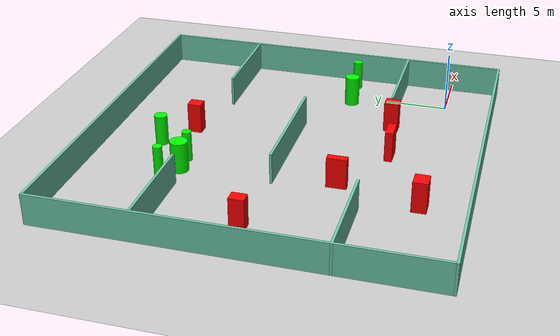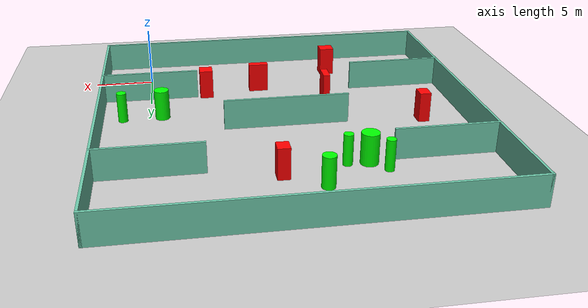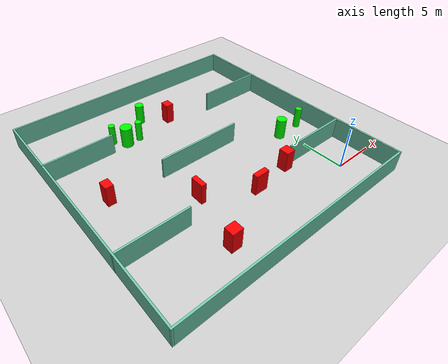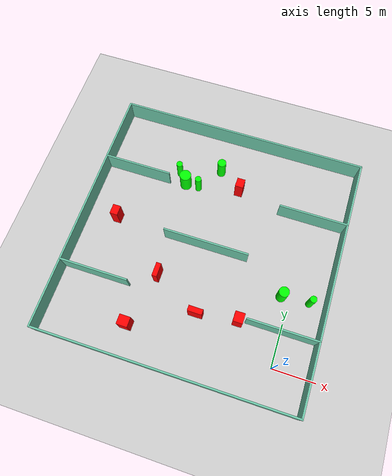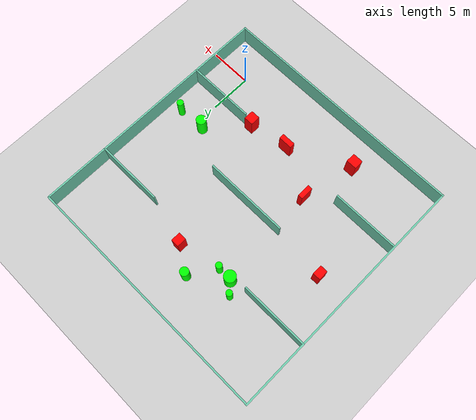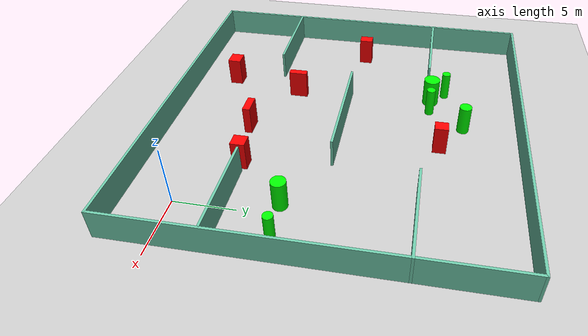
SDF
<sdf version="1.7">
 <world name="default">
  <light name="sun" type="directional">
   <pose>0 0 10 0 -0 0</pose>
   <diffuse>0.8 0.8 0.8 1</diffuse>
   <specular>0.2 0.2 0.2 1</specular>
   <attenuation>
    <range>1000</range>
    <constant>0.9</constant>
    <linear>0.01</linear>
    <quadratic>0.001</quadratic>
   </attenuation>
   <direction>-0.5 0.1 -0.9</direction>
   <spot><inner_angle>0</inner_angle><outer_angle>0</outer_angle><falloff>0</falloff></spot>
  </light>
  <model name="ground_plane">
   <static>1</static>
   <link name="link">
    <collision name="collision">
     <geometry><plane><normal>0 0 1</normal><size>100 100</size></plane></geometry>
     <surface>
      <contact><collide_bitmask>65535</collide_bitmask></contact>
      <friction><ode><mu>100</mu><mu2>50</mu2></ode></friction>
     </surface>
    </collision>
    <visual name="visual">
     <cast_shadows>0</cast_shadows>
     <geometry><plane><normal>0 0 1</normal><size>100 100</size></plane></geometry>
     <material>
      <script><uri>file://media/materials/scripts/gazebo.material</uri><name>Gazebo/Grey</name></script>
     </material>
    </visual>
   </link>
  </model>
  <gravity>0 0 -9.8</gravity>
  <magnetic_field>6e-06 2.3e-05 -4.2e-05</magnetic_field>
  <atmosphere type="adiabatic"/>
  <physics type="ode">
   <max_step_size>0.001</max_step_size>
   <real_time_factor>1</real_time_factor>
   <real_time_update_rate>1000</real_time_update_rate>
  </physics>
  <scene><ambient>0.4 0.4 0.4 1</ambient><background>0.7 0.7 0.7 1</background><shadows>1</shadows></scene>
  <spherical_coordinates>
   <surface_model>EARTH_WGS84</surface_model>
   <latitude_deg>0</latitude_deg>
   <longitude_deg>0</longitude_deg>
   <elevation>0</elevation>
   <heading_deg>0</heading_deg>
  </spherical_coordinates>
  <model name="my_base_walls">
   <link name="Wall_10">
    <collision name="Wall_10_Collision">
     <geometry><box><size>8.2 0.2 2.5</size></box></geometry>
     <pose>0 0 1.25 0 -0 0</pose>
    </collision>
    <visual name="Wall_10_Visual">
     <pose>0 0 1.25 0 -0 0</pose>
     <geometry><box><size>8.2 0.2 2.5</size></box></geometry>
     <material>
      <script><uri>file://media/materials/scripts/gazebo.material</uri><name>Gazebo/Grey</name></script>
      <ambient>0.435294 0.796078 0.67451 1</ambient>
     </material>
     <meta><layer>0</layer></meta>
    </visual>
    <pose>-11 -7 0 0 -0 0</pose>
   </link>
   <link name="Wall_12">
    <collision name="Wall_12_Collision">
     <geometry><box><size>8.2 0.2 2.5</size></box></geometry>
     <pose>0 0 1.25 0 -0 0</pose>
    </collision>
    <visual name="Wall_12_Visual">
     <pose>0 0 1.25 0 -0 0</pose>
     <geometry><box><size>8.2 0.2 2.5</size></box></geometry>
     <material>
      <script><uri>file://media/materials/scripts/gazebo.material</uri><name>Gazebo/Grey</name></script>
      <ambient>0.435294 0.796078 0.67451 1</ambient>
     </material>
     <meta><layer>0</layer></meta>
    </visual>
    <pose>-11 7 0 0 -0 0</pose>
   </link>
   <link name="Wall_14">
    <collision name="Wall_14_Collision">
     <geometry><box><size>8.2 0.2 2.5</size></box></geometry>
     <pose>0 0 1.25 0 -0 0</pose>
    </collision>
    <visual name="Wall_14_Visual">
     <pose>0 0 1.25 0 -0 0</pose>
     <geometry><box><size>8.2 0.2 2.5</size></box></geometry>
     <material>
      <script><uri>file://media/materials/scripts/gazebo.material</uri><name>Gazebo/Grey</name></script>
      <ambient>0.435294 0.796078 0.67451 1</ambient>
     </material>
     <meta><layer>0</layer></meta>
    </visual>
    <pose>11 7 0 0 -0 3.14159</pose>
   </link>
   <link name="Wall_16">
    <collision name="Wall_16_Collision">
     <geometry><box><size>10.2 0.2 2.5</size></box></geometry>
     <pose>0 0 1.25 0 -0 0</pose>
    </collision>
    <visual name="Wall_16_Visual">
     <pose>0 0 1.25 0 -0 0</pose>
     <geometry><box><size>10.2 0.2 2.5</size></box></geometry>
     <material>
      <script><uri>file://media/materials/scripts/gazebo.material</uri><name>Gazebo/Grey</name></script>
      <ambient>0.435294 0.796078 0.67451 1</ambient>
     </material>
     <meta><layer>0</layer></meta>
    </visual>
    <pose>0 0 0 0 -0 3.14159</pose>
   </link>
   <link name="Wall_2">
    <collision name="Wall_2_Collision">
     <geometry><box><size>30.2 0.2 2.5</size></box></geometry>
     <pose>0 0 1.25 0 -0 0</pose>
    </collision>
    <visual name="Wall_2_Visual">
     <pose>0 0 1.25 0 -0 0</pose>
     <geometry><box><size>30.2 0.2 2.5</size></box></geometry>
     <material>
      <script><uri>file://media/materials/scripts/gazebo.material</uri><name>Gazebo/Grey</name></script>
      <ambient>0.435294 0.796078 0.67451 1</ambient>
     </material>
     <meta><layer>0</layer></meta>
    </visual>
    <pose>0 -15 0 0 -0 3.14159</pose>
   </link>
   <link name="Wall_3">
    <collision name="Wall_3_Collision">
     <geometry><box><size>30.2 0.2 2.5</size></box></geometry>
     <pose>0 0 1.25 0 -0 0</pose>
    </collision>
    <visual name="Wall_3_Visual">
     <pose>0 0 1.25 0 -0 0</pose>
     <geometry><box><size>30.2 0.2 2.5</size></box></geometry>
     <material>
      <script><uri>file://media/materials/scripts/gazebo.material</uri><name>Gazebo/Grey</name></script>
      <ambient>0.435294 0.796078 0.67451 1</ambient>
     </material>
     <meta><layer>0</layer></meta>
    </visual>
    <pose>-15 0 0 0 -0 1.5708</pose>
   </link>
   <link name="Wall_4">
    <collision name="Wall_4_Collision">
     <geometry><box><size>30.2 0.2 2.5</size></box></geometry>
     <pose>0 0 1.25 0 -0 0</pose>
    </collision>
    <visual name="Wall_4_Visual">
     <pose>0 0 1.25 0 -0 0</pose>
     <geometry><box><size>30.2 0.2 2.5</size></box></geometry>
     <material>
      <script><uri>file://media/materials/scripts/gazebo.material</uri><name>Gazebo/Grey</name></script>
      <ambient>0.435294 0.796078 0.67451 1</ambient>
     </material>
     <meta><layer>0</layer></meta>
    </visual>
    <pose>0 15 0 0 -0 0</pose>
   </link>
   <link name="Wall_6">
    <collision name="Wall_6_Collision">
     <geometry><box><size>30.2 0.2 2.5</size></box></geometry>
     <pose>0 0 1.25 0 -0 0</pose>
    </collision>
    <visual name="Wall_6_Visual">
     <pose>0 0 1.25 0 -0 0</pose>
     <geometry><box><size>30.2 0.2 2.5</size></box></geometry>
     <material>
      <script><uri>file://media/materials/scripts/gazebo.material</uri><name>Gazebo/Grey</name></script>
      <ambient>0.435294 0.796078 0.67451 1</ambient>
     </material>
     <meta><layer>0</layer></meta>
    </visual>
    <pose>15 0 0 0 -0 1.5708</pose>
   </link>
   <link name="Wall_8">
    <collision name="Wall_8_Collision">
     <geometry><box><size>8.2 0.2 2.5</size></box></geometry>
     <pose>0 0 1.25 0 -0 0</pose>
    </collision>
    <visual name="Wall_8_Visual">
     <pose>0 0 1.25 0 -0 0</pose>
     <geometry><box><size>8.2 0.2 2.5</size></box></geometry>
     <material>
      <script><uri>file://media/materials/scripts/gazebo.material</uri><name>Gazebo/Grey</name></script>
      <ambient>0.435294 0.796078 0.67451 1</ambient>
     </material>
     <meta><layer>0</layer></meta>
    </visual>
    <pose>11 -7 0 0 -0 3.14159</pose>
   </link>
   <static>1</static>
   <pose>-11 11 0 0 -0 0</pose>
  </model>
  <model name="cylinder1">
   <static>1</static>
   <link name="link">
    <inertial>
     <mass>1</mass>
     <inertia><ixx>0.5</ixx><ixy>0</ixy><ixz>0</ixz><iyy>0.5</iyy><iyz>0</iyz><izz>1</izz></inertia>
    </inertial>
    <collision name="collision">
     <geometry><cylinder><radius>0.5177661518614485</radius><length>2.5</length></cylinder></geometry>
    </collision>
    <visual name="visual">
     <geometry><cylinder><radius>0.5177661518614485</radius><length>2.5</length></cylinder></geometry>
     <material>
      <ambient>0 1 0 1</ambient>
      <diffuse>0 1 0 1</diffuse>
      <specular>0.1 0.1 0.1 1</specular>
      <emissive>0 0 0 0</emissive>
     </material>
    </visual>
   </link>
   <pose>-12.266154815924784 21.303723929901448 1.25 0 0 0</pose>
  </model>
  <model name="cylinder2">
   <static>1</static>
   <link name="link">
    <inertial>
     <mass>1</mass>
     <inertia><ixx>0.5</ixx><ixy>0</ixy><ixz>0</ixz><iyy>0.5</iyy><iyz>0</iyz><izz>1</izz></inertia>
    </inertial>
    <collision name="collision">
     <geometry><cylinder><radius>0.3673973142536098</radius><length>2.5</length></cylinder></geometry>
    </collision>
    <visual name="visual">
     <geometry><cylinder><radius>0.3673973142536098</radius><length>2.5</length></cylinder></geometry>
     <material>
      <ambient>0 1 0 1</ambient>
      <diffuse>0 1 0 1</diffuse>
      <specular>0.1 0.1 0.1 1</specular>
      <emissive>0 0 0 0</emissive>
     </material>
    </visual>
   </link>
   <pose>-17.13352641915105 19.587362740463483 1.25 0 0 0</pose>
  </model>
  <model name="cylinder3">
   <static>1</static>
   <link name="link">
    <inertial>
     <mass>1</mass>
     <inertia><ixx>0.5</ixx><ixy>0</ixy><ixz>0</ixz><iyy>0.5</iyy><iyz>0</iyz><izz>1</izz></inertia>
    </inertial>
    <collision name="collision">
     <geometry><cylinder><radius>0.39369198675671097</radius><length>2.5</length></cylinder></geometry>
    </collision>
    <visual name="visual">
     <geometry><cylinder><radius>0.39369198675671097</radius><length>2.5</length></cylinder></geometry>
     <material>
      <ambient>0 1 0 1</ambient>
      <diffuse>0 1 0 1</diffuse>
      <specular>0.1 0.1 0.1 1</specular>
      <emissive>0 0 0 0</emissive>
     </material>
    </visual>
   </link>
   <pose>2.2602302576786606 8.22832381212483 1.25 0 0 0</pose>
  </model>
  <model name="cylinder4">
   <static>1</static>
   <link name="link">
    <inertial>
     <mass>1</mass>
     <inertia><ixx>0.5</ixx><ixy>0</ixy><ixz>0</ixz><iyy>0.5</iyy><iyz>0</iyz><izz>1</izz></inertia>
    </inertial>
    <collision name="collision">
     <geometry><cylinder><radius>0.3777326082063172</radius><length>2.5</length></cylinder></geometry>
    </collision>
    <visual name="visual">
     <geometry><cylinder><radius>0.3777326082063172</radius><length>2.5</length></cylinder></geometry>
     <material>
      <ambient>0 1 0 1</ambient>
      <diffuse>0 1 0 1</diffuse>
      <specular>0.1 0.1 0.1 1</specular>
      <emissive>0 0 0 0</emissive>
     </material>
    </visual>
   </link>
   <pose>-14.328169057670465 18.323867639379188 1.25 0 0 0</pose>
  </model>
  <model name="cylinder5">
   <static>1</static>
   <link name="link">
    <inertial>
     <mass>1</mass>
     <inertia><ixx>0.5</ixx><ixy>0</ixy><ixz>0</ixz><iyy>0.5</iyy><iyz>0</iyz><izz>1</izz></inertia>
    </inertial>
    <collision name="collision">
     <geometry><cylinder><radius>0.6008494279371461</radius><length>2.5</length></cylinder></geometry>
    </collision>
    <visual name="visual">
     <geometry><cylinder><radius>0.6008494279371461</radius><length>2.5</length></cylinder></geometry>
     <material>
      <ambient>0 1 0 1</ambient>
      <diffuse>0 1 0 1</diffuse>
      <specular>0.1 0.1 0.1 1</specular>
      <emissive>0 0 0 0</emissive>
     </material>
    </visual>
   </link>
   <pose>-0.9879172814151573 8.056004182993648 1.25 0 0 0</pose>
  </model>
  <model name="cylinder6">
   <static>1</static>
   <link name="link">
    <inertial>
     <mass>1</mass>
     <inertia><ixx>0.5</ixx><ixy>0</ixy><ixz>0</ixz><iyy>0.5</iyy><iyz>0</iyz><izz>1</izz></inertia>
    </inertial>
    <collision name="collision">
     <geometry><cylinder><radius>0.6982001786604926</radius><length>2.5</length></cylinder></geometry>
    </collision>
    <visual name="visual">
     <geometry><cylinder><radius>0.6982001786604926</radius><length>2.5</length></cylinder></geometry>
     <material>
      <ambient>0 1 0 1</ambient>
      <diffuse>0 1 0 1</diffuse>
      <specular>0.1 0.1 0.1 1</specular>
      <emissive>0 0 0 0</emissive>
     </material>
    </visual>
   </link>
   <pose>-15.96366167968439 18.33431980197566 1.25 0 0 0</pose>
  </model>
  <model name="box1">
   <static>1</static>
   <link name="link">
    <inertial>
     <mass>1</mass>
     <inertia><ixx>0.083</ixx><ixy>0</ixy><ixz>0</ixz><iyy>0.083</iyy><iyz>0</iyz><izz>0.083</izz></inertia>
    </inertial>
    <collision name="collision">
     <geometry><box><size>1.6684729389690118 0.6321114843252751 2.5</size></box></geometry>
    </collision>
    <visual name="visual">
     <geometry><box><size>1.6684729389690118 0.6321114843252751 2.5</size></box></geometry>
     <material>
      <ambient>1 0 0 1</ambient>
      <diffuse>1 0 0 1</diffuse>
      <specular>0.1 0.1 0.1 1</specular>
      <emissive>0 0 0 0</emissive>
     </material>
    </visual>
    <sensor name="my_contact" type="contact">
     <contact><collision>box_collision</collision><topic>__default_topic__</topic></contact>
    </sensor>
   </link>
   <pose>-9.637424125217334 3.135543642594474 1.25 0 0 0</pose>
  </model>
  <model name="box2">
   <static>1</static>
   <link name="link">
    <inertial>
     <mass>1</mass>
     <inertia><ixx>0.083</ixx><ixy>0</ixy><ixz>0</ixz><iyy>0.083</iyy><iyz>0</iyz><izz>0.083</izz></inertia>
    </inertial>
    <collision name="collision">
     <geometry><box><size>0.5763682596659416 1.5860652551572625 2.5</size></box></geometry>
    </collision>
    <visual name="visual">
     <geometry><box><size>0.5763682596659416 1.5860652551572625 2.5</size></box></geometry>
     <material>
      <ambient>1 0 0 1</ambient>
      <diffuse>1 0 0 1</diffuse>
      <specular>0.1 0.1 0.1 1</specular>
      <emissive>0 0 0 0</emissive>
     </material>
    </visual>
    <sensor name="my_contact" type="contact">
     <contact><collision>box_collision</collision><topic>__default_topic__</topic></contact>
    </sensor>
   </link>
   <pose>-15.188413076087544 6.133968643486071 1.25 0 0 0</pose>
  </model>
  <model name="box3">
   <static>1</static>
   <link name="link">
    <inertial>
     <mass>1</mass>
     <inertia><ixx>0.083</ixx><ixy>0</ixy><ixz>0</ixz><iyy>0.083</iyy><iyz>0</iyz><izz>0.083</izz></inertia>
    </inertial>
    <collision name="collision">
     <geometry><box><size>1.1226105608577135 1.1770475584574163 2.5</size></box></geometry>
    </collision>
    <visual name="visual">
     <geometry><box><size>1.1226105608577135 1.1770475584574163 2.5</size></box></geometry>
     <material>
      <ambient>1 0 0 1</ambient>
      <diffuse>1 0 0 1</diffuse>
      <specular>0.1 0.1 0.1 1</specular>
      <emissive>0 0 0 0</emissive>
     </material>
    </visual>
    <sensor name="my_contact" type="contact">
     <contact><collision>box_collision</collision><topic>__default_topic__</topic></contact>
    </sensor>
   </link>
   <pose>-4.8908957533015 3.8542848855867913 1.25 0 0 0</pose>
  </model>
  <model name="box4">
   <static>1</static>
   <link name="link">
    <inertial>
     <mass>1</mass>
     <inertia><ixx>0.083</ixx><ixy>0</ixy><ixz>0</ixz><iyy>0.083</iyy><iyz>0</iyz><izz>0.083</izz></inertia>
    </inertial>
    <collision name="collision">
     <geometry><box><size>0.9703528287785261 1.1195529537012827 2.5</size></box></geometry>
    </collision>
    <visual name="visual">
     <geometry><box><size>0.9703528287785261 1.1195529537012827 2.5</size></box></geometry>
     <material>
      <ambient>1 0 0 1</ambient>
      <diffuse>1 0 0 1</diffuse>
      <specular>0.1 0.1 0.1 1</specular>
      <emissive>0 0 0 0</emissive>
     </material>
    </visual>
    <sensor name="my_contact" type="contact">
     <contact><collision>box_collision</collision><topic>__default_topic__</topic></contact>
    </sensor>
   </link>
   <pose>-9.369358244625447 19.384468030801507 1.25 0 0 0</pose>
  </model>
  <model name="box5">
   <static>1</static>
   <link name="link">
    <inertial>
     <mass>1</mass>
     <inertia><ixx>0.083</ixx><ixy>0</ixy><ixz>0</ixz><iyy>0.083</iyy><iyz>0</iyz><izz>0.083</izz></inertia>
    </inertial>
    <collision name="collision">
     <geometry><box><size>0.9208667896220752 1.1767027491336035 2.5</size></box></geometry>
    </collision>
    <visual name="visual">
     <geometry><box><size>0.9208667896220752 1.1767027491336035 2.5</size></box></geometry>
     <material>
      <ambient>1 0 0 1</ambient>
      <diffuse>1 0 0 1</diffuse>
      <specular>0.1 0.1 0.1 1</specular>
      <emissive>0 0 0 0</emissive>
     </material>
    </visual>
    <sensor name="my_contact" type="contact">
     <contact><collision>box_collision</collision><topic>__default_topic__</topic></contact>
    </sensor>
   </link>
   <pose>-22.30772706685397 11.501338891807606 1.25 0 0 0</pose>
  </model>
  <model name="box6">
   <static>1</static>
   <link name="link">
    <inertial>
     <mass>1</mass>
     <inertia><ixx>0.083</ixx><ixy>0</ixy><ixz>0</ixz><iyy>0.083</iyy><iyz>0</iyz><izz>0.083</izz></inertia>
    </inertial>
    <collision name="collision">
     <geometry><box><size>1.2645773902184945 1.1431617201349795 2.5</size></box></geometry>
    </collision>
    <visual name="visual">
     <geometry><box><size>1.2645773902184945 1.1431617201349795 2.5</size></box></geometry>
     <material>
      <ambient>1 0 0 1</ambient>
      <diffuse>1 0 0 1</diffuse>
      <specular>0.1 0.1 0.1 1</specular>
      <emissive>0 0 0 0</emissive>
     </material>
    </visual>
    <sensor name="my_contact" type="contact">
     <contact><collision>box_collision</collision><topic>__default_topic__</topic></contact>
    </sensor>
   </link>
   <pose>-16.60203279921489 -0.3183493734689149 1.25 0 0 0</pose>
  </model>
 </world>
</sdf>
